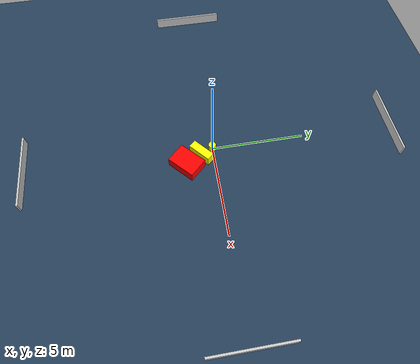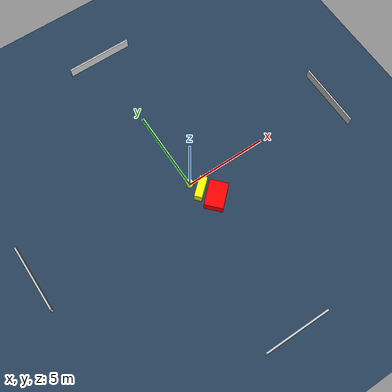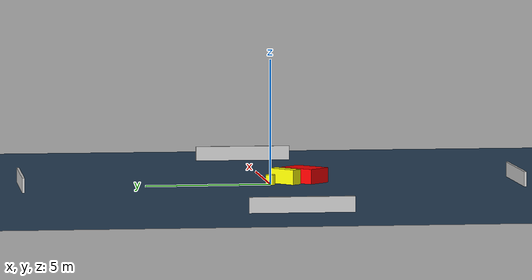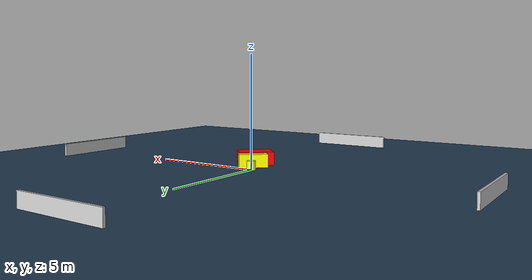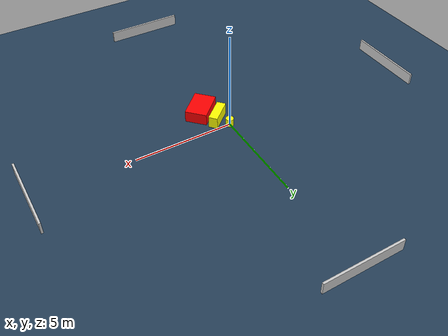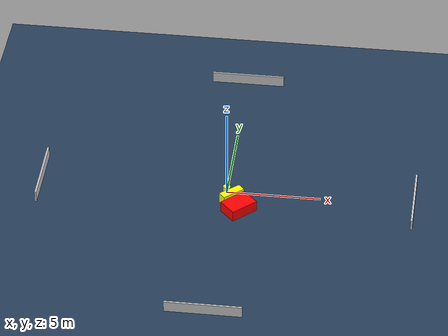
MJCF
<?xml version="1.0" ?>
<mujoco model="generated_environment">
  <option timestep="0.01" integrator="RK4" cone="elliptic"/>
  <default>
    <geom density="1"/>
  </default>
  <asset>
    <texture builtin="gradient" height="3072" name="skybox" rgb1="0.3 0.5 0.7" rgb2="0 0 0" type="skybox" width="512"/>
    <texture builtin="checker" height="300" name="groundplane" rgb1="0.2 0.3 0.4" rgb2="0.1 0.2 0.3" type="2d" width="300"/>
    <material name="groundplane" reflectance="0.2" texrepeat="5 5" texture="groundplane"/>
  </asset>
  <worldbody>
    <light dir="0 0 -1" directional="true" pos="0 0 1.5"/>
    <geom condim="3" friction="0.5 0.005 0.001" material="groundplane" name="floor" pos="0 0 0" size="0 0 0.05" type="plane"/>
    <body name="walls">
      <geom name="wall_1" condim="4" pos="-10.0 0.0 0.3" rgba="0.800000011920929 0.800000011920929 0.800000011920929 1.0" size="0.05 2.0 0.3" type="box"/>
      <geom name="wall_2" condim="4" pos="10.0 0.0 0.3" rgba="0.800000011920929 0.800000011920929 0.800000011920929 1.0" size="0.05 2.0 0.3" type="box"/>
      <geom name="wall_3" condim="4" pos="0.0 -10.0 0.3" rgba="0.800000011920929 0.800000011920929 0.800000011920929 1.0" size="2.0 0.05 0.3" type="box"/>
      <geom name="wall_4" condim="4" pos="0.0 10.0 0.3" rgba="0.800000011920929 0.800000011920929 0.800000011920929 1.0" size="2.0 0.05 0.3" type="box"/>
    </body>
    <body name="robot">
      <joint name="joint_x" type="slide" pos="0 0 0" axis="1 0 0"/>
      <joint name="joint_y" type="slide" pos="0 0 0" axis="0 1 0"/>
      <geom name="robot" type="cylinder" pos="0.0 0.0 0.2" size="0.2 0.2 0.0" mass="5.0" friction="1.0 0.005 0.0001" condim="4" rgba="1.0 1.0 0.0 1.0"/>
    </body>
    <body name="obstacle_1_movable">
      <geom name="obstacle_1_movable" condim="4" pos="0.33718916966850804 -0.631980414032253 0.3" euler="0 0 311.37511228021" friction="0.0 0.005 0.001" rgba="1.0 1.0 0.0 1.0" size="0.2252611004399211 0.6449099903697422 0.3" type="box" mass="0.1"/>
      <joint type="free"/>
    </body>
    <body name="obstacle_2_static">
      <geom name="obstacle_2_static" condim="4" pos="0.8079661828736258 -1.4817747413188112 0.3" euler="0 0 313.4483727643608" friction="0.0 0.005 0.001" rgba="1.0 0.0 0.0 1.0" size="0.549181586825023 0.7823028963965231 0.3" type="box"/>
    </body>
  </worldbody>
  <actuator>
    <motor name="actuator_x" joint="joint_x" gear="1" ctrlrange="-1 1"/>
    <motor name="actuator_y" joint="joint_y" gear="1" ctrlrange="-1 1"/>
  </actuator>
</mujoco>
